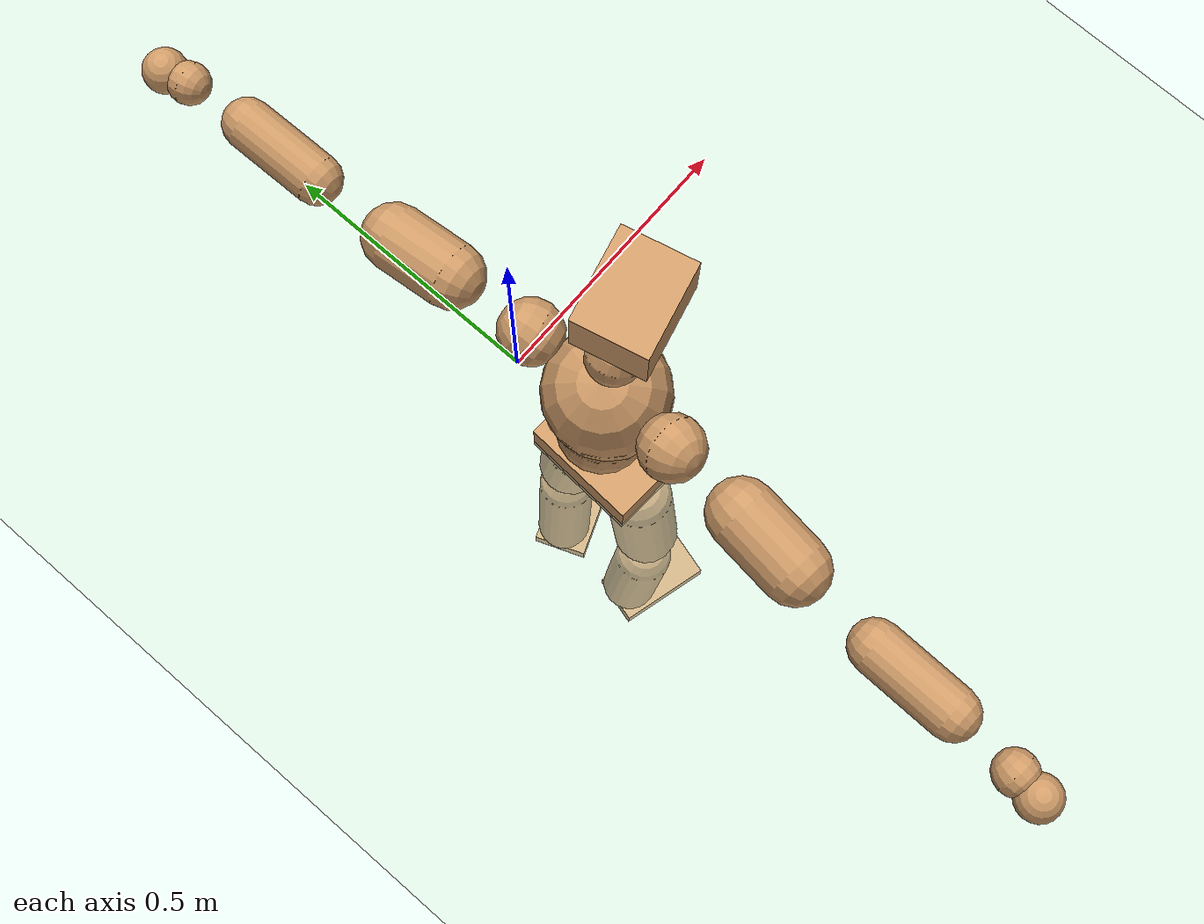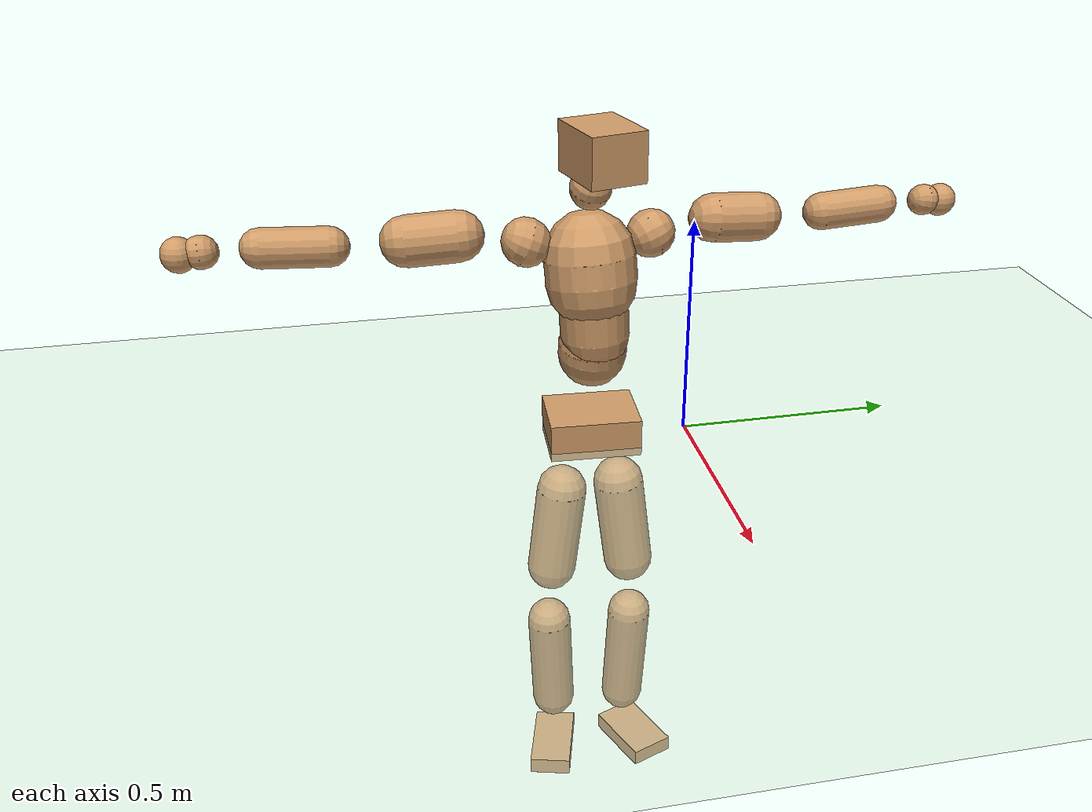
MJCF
<mujoco model="humanoid">
  <compiler coordinate="local" angle="radian"/>
  <default>
    <joint damping="0.0" armature="0.01" stiffness="0.0" limited="true"/>
    <geom conaffinity="1" condim="3" contype="7" margin="0.001" rgba="0.8 0.6 .4 1"/>
  </default>
  <asset>
    <texture type="skybox" builtin="gradient" rgb1=".4 .5 .6" rgb2="0 0 0" width="100" height="100"/>
    <texture builtin="flat" height="1278" mark="cross" markrgb="1 1 1" name="texgeom" random="0.01" rgb1="0.8 0.6 0.4" rgb2="0.8 0.6 0.4" type="cube" width="127"/>
    <texture builtin="checker" height="100" name="texplane" rgb1="0 0 0" rgb2="0.8 0.8 0.8" type="2d" width="100"/>
    <material name="MatPlane" reflectance="0.5" shininess="1" specular="1" texrepeat="60 60" texture="texplane"/>
    <material name="geom" texture="texgeom" texuniform="true"/>
  </asset>
  <worldbody>
    <light cutoff="100" diffuse="1 1 1" dir="-0 0 -1.3" directional="true" exponent="1" pos="0 0 1.3" specular=".1 .1 .1"/>
    <geom conaffinity="1" condim="3" name="floor" pos="0 0 0" rgba="0.8 0.9 0.8 1" size="100 100 .2" type="plane" material="MatPlane"/>
    <body name="Pelvis" pos="0.0002 -0.2226 0.0304">
      <freejoint name="Pelvis"/>
      <geom type="box" contype="1" conaffinity="1" density="5359.37418" pos="-0.0113 0.0006 -0.0079" size="0.0804 0.1042 0.0436" quat="0.9996 0.0000 0.0000 -0.0268" name="Pelvis"/>
      <body name="L_Hip" pos="-0.0158 0.0581 -0.0792">
        <joint name="L_Hip_x" type="hinge" pos="0 0 0" axis="1 0 0" stiffness="1600" damping="160" armature="0.02" range="-180.0000 180.0000"/>
        <joint name="L_Hip_y" type="hinge" pos="0 0 0" axis="0 1 0" stiffness="1600" damping="160" armature="0.02" range="-180.0000 180.0000"/>
        <joint name="L_Hip_z" type="hinge" pos="0 0 0" axis="0 0 1" stiffness="1600" damping="160" armature="0.02" range="-180.0000 180.0000"/>
        <geom type="capsule" contype="1" conaffinity="1" density="2040.816327" size="0.0595" fromto="0.0020 0.0106 -0.0889 0.0071 0.0374 -0.3125" name="L_Hip"/>
        <body name="L_Knee" pos="0.0091 0.0481 -0.4013">
          <joint name="L_Knee_x" type="hinge" pos="0 0 0" axis="1 0 0" stiffness="1600" damping="160" armature="0.02" range="-180.0000 180.0000"/>
          <joint name="L_Knee_y" type="hinge" pos="0 0 0" axis="0 1 0" stiffness="1600" damping="160" armature="0.02" range="-180.0000 180.0000"/>
          <joint name="L_Knee_z" type="hinge" pos="0 0 0" axis="0 0 1" stiffness="1600" damping="160" armature="0.02" range="-180.0000 180.0000"/>
          <geom type="capsule" contype="1" conaffinity="1" density="1234.567901" size="0.0531" fromto="-0.0065 -0.0026 -0.0828 -0.0287 -0.0116 -0.3638" name="L_Knee"/>
          <body name="L_Ankle" pos="-0.0352 -0.0143 -0.4467">
            <joint name="L_Ankle_x" type="hinge" pos="0 0 0" axis="1 0 0" stiffness="1600" damping="160" armature="0.02" range="-180.0000 180.0000"/>
            <joint name="L_Ankle_y" type="hinge" pos="0 0 0" axis="0 1 0" stiffness="1600" damping="160" armature="0.02" range="-180.0000 180.0000"/>
            <joint name="L_Ankle_z" type="hinge" pos="0 0 0" axis="0 0 1" stiffness="1600" damping="160" armature="0.02" range="-180.0000 180.0000"/>
            <geom type="box" contype="1" conaffinity="1" density="1000.000044" pos="0.0615 0.0239 -0.0312" size="0.0888 0.0545 0.0207" quat="0.9829 0.0000 0.0000 0.1842" name="L_Ankle"/>
            <body name="L_Toe" pos="0.1229 0.0477 -0.0624">
              <joint name="L_Toe_x" type="hinge" pos="0 0 0" axis="1 0 0" stiffness="1000" damping="100" armature="0.02" range="-180.0000 180.0000"/>
              <joint name="L_Toe_y" type="hinge" pos="0 0 0" axis="0 1 0" stiffness="1000" damping="100" armature="0.02" range="-180.0000 180.0000"/>
              <joint name="L_Toe_z" type="hinge" pos="0 0 0" axis="0 0 1" stiffness="1000" damping="100" armature="0.02" range="-180.0000 180.0000"/>
              <geom type="box" contype="1" conaffinity="1" density="7967163.909875" pos="0.0000 0.0000 0.0318" size="0.0011 0.0026 0.0011" quat="0.9821 0.0000 0.0000 0.1883" name="L_Toe"/>
            </body>
          </body>
        </body>
      </body>
      <body name="R_Hip" pos="-0.0127 -0.0591 -0.0872">
        <joint name="R_Hip_x" type="hinge" pos="0 0 0" axis="1 0 0" stiffness="1600" damping="160" armature="0.02" range="-180.0000 180.0000"/>
        <joint name="R_Hip_y" type="hinge" pos="0 0 0" axis="0 1 0" stiffness="1600" damping="160" armature="0.02" range="-180.0000 180.0000"/>
        <joint name="R_Hip_z" type="hinge" pos="0 0 0" axis="0 0 1" stiffness="1600" damping="160" armature="0.02" range="-180.0000 180.0000"/>
        <geom type="capsule" contype="1" conaffinity="1" density="2040.816327" size="0.0589" fromto="-0.0009 -0.0107 -0.0883 -0.0030 -0.0374 -0.3087" name="R_Hip"/>
        <body name="R_Knee" pos="-0.0039 -0.0481 -0.3969">
          <joint name="R_Knee_x" type="hinge" pos="0 0 0" axis="1 0 0" stiffness="1600" damping="160" armature="0.02" range="-180.0000 180.0000"/>
          <joint name="R_Knee_y" type="hinge" pos="0 0 0" axis="0 1 0" stiffness="1600" damping="160" armature="0.02" range="-180.0000 180.0000"/>
          <joint name="R_Knee_z" type="hinge" pos="0 0 0" axis="0 0 1" stiffness="1600" damping="160" armature="0.02" range="-180.0000 180.0000"/>
          <geom type="capsule" contype="1" conaffinity="1" density="1234.567901" size="0.0537" fromto="-0.0061 0.0035 -0.0834 -0.0261 0.0149 -0.3556" name="R_Knee"/>
          <body name="R_Ankle" pos="-0.0322 0.0184 -0.439">
            <joint name="R_Ankle_x" type="hinge" pos="0 0 0" axis="1 0 0" stiffness="1600" damping="160" armature="0.02" range="-180.0000 180.0000"/>
            <joint name="R_Ankle_y" type="hinge" pos="0 0 0" axis="0 1 0" stiffness="1600" damping="160" armature="0.02" range="-180.0000 180.0000"/>
            <joint name="R_Ankle_z" type="hinge" pos="0 0 0" axis="0 0 1" stiffness="1600" damping="160" armature="0.02" range="-180.0000 180.0000"/>
            <geom type="box" contype="1" conaffinity="1" density="999.999981" pos="0.0656 -0.0178 -0.0329" size="0.0926 0.0508 0.0221" quat="0.9912 0.0000 0.0000 -0.1323" name="R_Ankle"/>
            <body name="R_Toe" pos="0.1311 -0.0356 -0.0658">
              <joint name="R_Toe_x" type="hinge" pos="0 0 0" axis="1 0 0" stiffness="1000" damping="100" armature="0.02" range="-180.0000 180.0000"/>
              <joint name="R_Toe_y" type="hinge" pos="0 0 0" axis="0 1 0" stiffness="1000" damping="100" armature="0.02" range="-180.0000 180.0000"/>
              <joint name="R_Toe_z" type="hinge" pos="0 0 0" axis="0 0 1" stiffness="1000" damping="100" armature="0.02" range="-180.0000 180.0000"/>
              <geom type="box" contype="1" conaffinity="1" density="8504558.816349" pos="0.0000 0.0000 0.0327" size="0.0011 0.0025 0.0011" quat="0.9923 0.0000 0.0000 -0.1235" name="R_Toe"/>
            </body>
          </body>
        </body>
      </body>
      <body name="Torso" pos="-0.0394 0.0046 0.1189">
        <joint name="Torso_x" type="hinge" pos="0 0 0" axis="1 0 0" stiffness="2000" damping="200" armature="0.02" range="-180.0000 180.0000"/>
        <joint name="Torso_y" type="hinge" pos="0 0 0" axis="0 1 0" stiffness="2000" damping="200" armature="0.02" range="-180.0000 180.0000"/>
        <joint name="Torso_z" type="hinge" pos="0 0 0" axis="0 0 1" stiffness="2000" damping="200" armature="0.02" range="-180.0000 180.0000"/>
        <geom type="capsule" contype="1" conaffinity="1" density="2040.816327" size="0.0777" fromto="0.0145 0.0020 0.0763 0.0096 0.0013 0.0503" name="Torso"/>
        <body name="Spine" pos="0.0241 0.0033 0.1266">
          <joint name="Spine_x" type="hinge" pos="0 0 0" axis="1 0 0" stiffness="2000" damping="200" armature="0.02" range="-180.0000 180.0000"/>
          <joint name="Spine_y" type="hinge" pos="0 0 0" axis="0 1 0" stiffness="2000" damping="200" armature="0.02" range="-180.0000 180.0000"/>
          <joint name="Spine_z" type="hinge" pos="0 0 0" axis="0 0 1" stiffness="2000" damping="200" armature="0.02" range="-180.0000 180.0000"/>
          <geom type="capsule" contype="1" conaffinity="1" density="2040.816327" size="0.0774" fromto="0.0004 -0.0042 0.0773 -0.0001 0.0014 -0.0261" name="Spine"/>
          <body name="Chest" pos="0.0003 -0.0028 0.0512">
            <joint name="Chest_x" type="hinge" pos="0 0 0" axis="1 0 0" stiffness="2000" damping="200" armature="0.02" range="-180.0000 180.0000"/>
            <joint name="Chest_y" type="hinge" pos="0 0 0" axis="0 1 0" stiffness="2000" damping="200" armature="0.02" range="-180.0000 180.0000"/>
            <joint name="Chest_z" type="hinge" pos="0 0 0" axis="0 0 1" stiffness="2000" damping="200" armature="0.02" range="-180.0000 180.0000"/>
            <geom type="capsule" contype="1" conaffinity="1" density="2040.816327" size="0.1016" fromto="-0.0166 -0.0056 0.1001 -0.0075 -0.0025 0.0453" name="Chest"/>
            <body name="Neck" pos="-0.0292 -0.0121 0.2099">
              <joint name="Neck_x" type="hinge" pos="0 0 0" axis="1 0 0" stiffness="1000" damping="100" armature="0.02" range="-180.0000 180.0000"/>
              <joint name="Neck_y" type="hinge" pos="0 0 0" axis="0 1 0" stiffness="1000" damping="100" armature="0.02" range="-180.0000 180.0000"/>
              <joint name="Neck_z" type="hinge" pos="0 0 0" axis="0 0 1" stiffness="1000" damping="100" armature="0.02" range="-180.0000 180.0000"/>
              <geom type="capsule" contype="1" conaffinity="1" density="1000" size="0.0451" fromto="0.0259 0.0055 0.0445 0.0269 0.0057 0.0462" name="Neck"/>
              <body name="Head" pos="0.0527 0.0113 0.0906">
                <joint name="Head_x" type="hinge" pos="0 0 0" axis="1 0 0" stiffness="1000" damping="100" armature="0.02" range="-180.0000 180.0000"/>
                <joint name="Head_y" type="hinge" pos="0 0 0" axis="0 1 0" stiffness="1000" damping="100" armature="0.02" range="-180.0000 180.0000"/>
                <joint name="Head_z" type="hinge" pos="0 0 0" axis="0 0 1" stiffness="1000" damping="100" armature="0.02" range="-180.0000 180.0000"/>
                <geom type="box" contype="1" conaffinity="1" density="2250.000086" pos="0.0274 0.0066 0.0463" size="0.0789 0.0621 0.053" quat="0.9929 0.0000 0.0000 0.1186" name="Head"/>
              </body>
            </body>
            <body name="L_Thorax" pos="-0.0198 0.0723 0.1136">
              <joint name="L_Thorax_x" type="hinge" pos="0 0 0" axis="1 0 0" stiffness="1000" damping="100" armature="0.02" range="-180.0000 180.0000"/>
              <joint name="L_Thorax_y" type="hinge" pos="0 0 0" axis="0 1 0" stiffness="1000" damping="100" armature="0.02" range="-180.0000 180.0000"/>
              <joint name="L_Thorax_z" type="hinge" pos="0 0 0" axis="0 0 1" stiffness="1000" damping="100" armature="0.02" range="-180.0000 180.0000"/>
              <geom type="capsule" contype="1" conaffinity="1" density="1000" size="0.0527" fromto="-0.0087 0.0603 0.0241 -0.0090 0.0621 0.0248" name="L_Thorax"/>
              <body name="L_Shoulder" pos="-0.0177 0.1224 0.0489">
                <joint name="L_Shoulder_x" type="hinge" pos="0 0 0" axis="1 0 0" stiffness="1000" damping="100" armature="0.02" range="-720.0000 720.0000"/>
                <joint name="L_Shoulder_y" type="hinge" pos="0 0 0" axis="0 1 0" stiffness="1000" damping="100" armature="0.02" range="-720.0000 720.0000"/>
                <joint name="L_Shoulder_z" type="hinge" pos="0 0 0" axis="0 0 1" stiffness="1000" damping="100" armature="0.02" range="-720.0000 720.0000"/>
                <geom type="capsule" contype="1" conaffinity="1" density="1000" size="0.0537" fromto="-0.0070 0.0832 -0.0055 -0.0159 0.1893 -0.0126" name="L_Shoulder"/>
                <body name="L_Elbow" pos="-0.0229 0.2725 -0.0181">
                  <joint name="L_Elbow_x" type="hinge" pos="0 0 0" axis="1 0 0" stiffness="1000" damping="100" armature="0.02" range="-720.0000 720.0000"/>
                  <joint name="L_Elbow_y" type="hinge" pos="0 0 0" axis="0 1 0" stiffness="1000" damping="100" armature="0.02" range="-720.0000 720.0000"/>
                  <joint name="L_Elbow_z" type="hinge" pos="0 0 0" axis="0 0 1" stiffness="1000" damping="100" armature="0.02" range="-720.0000 720.0000"/>
                  <geom type="capsule" contype="1" conaffinity="1" density="1000" size="0.0414" fromto="-0.0021 0.0713 0.0036 -0.0063 0.2091 0.0105" name="L_Elbow"/>
                  <body name="L_Wrist" pos="-0.0084 0.2804 0.0141">
                    <joint name="L_Wrist_x" type="hinge" pos="0 0 0" axis="1 0 0" stiffness="600" damping="60" armature="0.02" range="-180.0000 180.0000"/>
                    <joint name="L_Wrist_y" type="hinge" pos="0 0 0" axis="0 1 0" stiffness="600" damping="60" armature="0.02" range="-180.0000 180.0000"/>
                    <joint name="L_Wrist_z" type="hinge" pos="0 0 0" axis="0 0 1" stiffness="600" damping="60" armature="0.02" range="-180.0000 180.0000"/>
                    <geom type="capsule" contype="1" conaffinity="1" density="1000" size="0.0346" fromto="-0.0080 0.0436 -0.0052 -0.0083 0.0456 -0.0055" name="L_Wrist"/>
                    <body name="L_Hand" pos="-0.0163 0.0892 -0.0107">
                      <joint name="L_Hand_x" type="hinge" pos="0 0 0" axis="1 0 0" stiffness="600" damping="60" armature="0.02" range="-180.0000 180.0000"/>
                      <joint name="L_Hand_y" type="hinge" pos="0 0 0" axis="0 1 0" stiffness="600" damping="60" armature="0.02" range="-180.0000 180.0000"/>
                      <joint name="L_Hand_z" type="hinge" pos="0 0 0" axis="0 0 1" stiffness="600" damping="60" armature="0.02" range="-180.0000 180.0000"/>
                      <geom type="sphere" contype="1" conaffinity="1" density="1000" size="0.0364" pos="0.0000 0.0000 0.0000" name="L_Hand"/>
                    </body>
                  </body>
                </body>
              </body>
            </body>
            <body name="R_Thorax" pos="-0.0231 -0.0846 0.1127">
              <joint name="R_Thorax_x" type="hinge" pos="0 0 0" axis="1 0 0" stiffness="1000" damping="100" armature="0.02" range="-180.0000 180.0000"/>
              <joint name="R_Thorax_y" type="hinge" pos="0 0 0" axis="0 1 0" stiffness="1000" damping="100" armature="0.02" range="-180.0000 180.0000"/>
              <joint name="R_Thorax_z" type="hinge" pos="0 0 0" axis="0 0 1" stiffness="1000" damping="100" armature="0.02" range="-180.0000 180.0000"/>
              <geom type="capsule" contype="1" conaffinity="1" density="1000" size="0.0535" fromto="-0.0036 -0.0565 0.0253 -0.0037 -0.0583 0.0261" name="R_Thorax"/>
              <body name="R_Shoulder" pos="-0.0074 -0.1148 0.0515">
                <joint name="R_Shoulder_x" type="hinge" pos="0 0 0" axis="1 0 0" stiffness="1000" damping="100" armature="0.02" range="-720.0000 720.0000"/>
                <joint name="R_Shoulder_y" type="hinge" pos="0 0 0" axis="0 1 0" stiffness="1000" damping="100" armature="0.02" range="-720.0000 720.0000"/>
                <joint name="R_Shoulder_z" type="hinge" pos="0 0 0" axis="0 0 1" stiffness="1000" damping="100" armature="0.02" range="-720.0000 720.0000"/>
                <geom type="capsule" contype="1" conaffinity="1" density="1000" size="0.0554" fromto="-0.0086 -0.0848 -0.0058 -0.0199 -0.1962 -0.0135" name="R_Shoulder"/>
                <body name="R_Elbow" pos="-0.0285 -0.2809 -0.0193">
                  <joint name="R_Elbow_x" type="hinge" pos="0 0 0" axis="1 0 0" stiffness="1000" damping="100" armature="0.02" range="-720.0000 720.0000"/>
                  <joint name="R_Elbow_y" type="hinge" pos="0 0 0" axis="0 1 0" stiffness="1000" damping="100" armature="0.02" range="-720.0000 720.0000"/>
                  <joint name="R_Elbow_z" type="hinge" pos="0 0 0" axis="0 0 1" stiffness="1000" damping="100" armature="0.02" range="-720.0000 720.0000"/>
                  <geom type="capsule" contype="1" conaffinity="1" density="1000" size="0.0426" fromto="-0.0016 -0.0726 0.0027 -0.0047 -0.2151 0.0081" name="R_Elbow"/>
                  <body name="R_Wrist" pos="-0.0063 -0.2877 0.0109">
                    <joint name="R_Wrist_x" type="hinge" pos="0 0 0" axis="1 0 0" stiffness="600" damping="60" armature="0.02" range="-180.0000 180.0000"/>
                    <joint name="R_Wrist_y" type="hinge" pos="0 0 0" axis="0 1 0" stiffness="600" damping="60" armature="0.02" range="-180.0000 180.0000"/>
                    <joint name="R_Wrist_z" type="hinge" pos="0 0 0" axis="0 0 1" stiffness="600" damping="60" armature="0.02" range="-180.0000 180.0000"/>
                    <geom type="capsule" contype="1" conaffinity="1" density="1000" size="0.0358" fromto="-0.0053 -0.0453 -0.0044 -0.0055 -0.0473 -0.0046" name="R_Wrist"/>
                    <body name="R_Hand" pos="-0.0109 -0.0925 -0.009">
                      <joint name="R_Hand_x" type="hinge" pos="0 0 0" axis="1 0 0" stiffness="600" damping="60" armature="0.02" range="-180.0000 180.0000"/>
                      <joint name="R_Hand_y" type="hinge" pos="0 0 0" axis="0 1 0" stiffness="600" damping="60" armature="0.02" range="-180.0000 180.0000"/>
                      <joint name="R_Hand_z" type="hinge" pos="0 0 0" axis="0 0 1" stiffness="600" damping="60" armature="0.02" range="-180.0000 180.0000"/>
                      <geom type="sphere" contype="1" conaffinity="1" density="1000" size="0.0375" pos="0.0000 0.0000 0.0000" name="R_Hand"/>
                    </body>
                  </body>
                </body>
              </body>
            </body>
          </body>
        </body>
      </body>
    </body>
  </worldbody>
  <actuator>
    <motor name="L_Hip_x" joint="L_Hip_x" gear="500"/>
    <motor name="L_Hip_y" joint="L_Hip_y" gear="500"/>
    <motor name="L_Hip_z" joint="L_Hip_z" gear="500"/>
    <motor name="L_Knee_x" joint="L_Knee_x" gear="500"/>
    <motor name="L_Knee_y" joint="L_Knee_y" gear="500"/>
    <motor name="L_Knee_z" joint="L_Knee_z" gear="500"/>
    <motor name="L_Ankle_x" joint="L_Ankle_x" gear="500"/>
    <motor name="L_Ankle_y" joint="L_Ankle_y" gear="500"/>
    <motor name="L_Ankle_z" joint="L_Ankle_z" gear="500"/>
    <motor name="L_Toe_x" joint="L_Toe_x" gear="500"/>
    <motor name="L_Toe_y" joint="L_Toe_y" gear="500"/>
    <motor name="L_Toe_z" joint="L_Toe_z" gear="500"/>
    <motor name="R_Hip_x" joint="R_Hip_x" gear="500"/>
    <motor name="R_Hip_y" joint="R_Hip_y" gear="500"/>
    <motor name="R_Hip_z" joint="R_Hip_z" gear="500"/>
    <motor name="R_Knee_x" joint="R_Knee_x" gear="500"/>
    <motor name="R_Knee_y" joint="R_Knee_y" gear="500"/>
    <motor name="R_Knee_z" joint="R_Knee_z" gear="500"/>
    <motor name="R_Ankle_x" joint="R_Ankle_x" gear="500"/>
    <motor name="R_Ankle_y" joint="R_Ankle_y" gear="500"/>
    <motor name="R_Ankle_z" joint="R_Ankle_z" gear="500"/>
    <motor name="R_Toe_x" joint="R_Toe_x" gear="500"/>
    <motor name="R_Toe_y" joint="R_Toe_y" gear="500"/>
    <motor name="R_Toe_z" joint="R_Toe_z" gear="500"/>
    <motor name="Torso_x" joint="Torso_x" gear="500"/>
    <motor name="Torso_y" joint="Torso_y" gear="500"/>
    <motor name="Torso_z" joint="Torso_z" gear="500"/>
    <motor name="Spine_x" joint="Spine_x" gear="500"/>
    <motor name="Spine_y" joint="Spine_y" gear="500"/>
    <motor name="Spine_z" joint="Spine_z" gear="500"/>
    <motor name="Chest_x" joint="Chest_x" gear="500"/>
    <motor name="Chest_y" joint="Chest_y" gear="500"/>
    <motor name="Chest_z" joint="Chest_z" gear="500"/>
    <motor name="Neck_x" joint="Neck_x" gear="500"/>
    <motor name="Neck_y" joint="Neck_y" gear="500"/>
    <motor name="Neck_z" joint="Neck_z" gear="500"/>
    <motor name="Head_x" joint="Head_x" gear="500"/>
    <motor name="Head_y" joint="Head_y" gear="500"/>
    <motor name="Head_z" joint="Head_z" gear="500"/>
    <motor name="L_Thorax_x" joint="L_Thorax_x" gear="500"/>
    <motor name="L_Thorax_y" joint="L_Thorax_y" gear="500"/>
    <motor name="L_Thorax_z" joint="L_Thorax_z" gear="500"/>
    <motor name="L_Shoulder_x" joint="L_Shoulder_x" gear="500"/>
    <motor name="L_Shoulder_y" joint="L_Shoulder_y" gear="500"/>
    <motor name="L_Shoulder_z" joint="L_Shoulder_z" gear="500"/>
    <motor name="L_Elbow_x" joint="L_Elbow_x" gear="500"/>
    <motor name="L_Elbow_y" joint="L_Elbow_y" gear="500"/>
    <motor name="L_Elbow_z" joint="L_Elbow_z" gear="500"/>
    <motor name="L_Wrist_x" joint="L_Wrist_x" gear="500"/>
    <motor name="L_Wrist_y" joint="L_Wrist_y" gear="500"/>
    <motor name="L_Wrist_z" joint="L_Wrist_z" gear="500"/>
    <motor name="L_Hand_x" joint="L_Hand_x" gear="500"/>
    <motor name="L_Hand_y" joint="L_Hand_y" gear="500"/>
    <motor name="L_Hand_z" joint="L_Hand_z" gear="500"/>
    <motor name="R_Thorax_x" joint="R_Thorax_x" gear="500"/>
    <motor name="R_Thorax_y" joint="R_Thorax_y" gear="500"/>
    <motor name="R_Thorax_z" joint="R_Thorax_z" gear="500"/>
    <motor name="R_Shoulder_x" joint="R_Shoulder_x" gear="500"/>
    <motor name="R_Shoulder_y" joint="R_Shoulder_y" gear="500"/>
    <motor name="R_Shoulder_z" joint="R_Shoulder_z" gear="500"/>
    <motor name="R_Elbow_x" joint="R_Elbow_x" gear="500"/>
    <motor name="R_Elbow_y" joint="R_Elbow_y" gear="500"/>
    <motor name="R_Elbow_z" joint="R_Elbow_z" gear="500"/>
    <motor name="R_Wrist_x" joint="R_Wrist_x" gear="500"/>
    <motor name="R_Wrist_y" joint="R_Wrist_y" gear="500"/>
    <motor name="R_Wrist_z" joint="R_Wrist_z" gear="500"/>
    <motor name="R_Hand_x" joint="R_Hand_x" gear="500"/>
    <motor name="R_Hand_y" joint="R_Hand_y" gear="500"/>
    <motor name="R_Hand_z" joint="R_Hand_z" gear="500"/>
  </actuator>
  <contact>
    <exclude body1="Torso" body2="Chest"/>
    <exclude body1="Head" body2="Chest"/>
    <exclude body1="R_Knee" body2="R_Toe"/>
    <exclude body1="R_Knee" body2="L_Ankle"/>
    <exclude body1="R_Knee" body2="L_Toe"/>
    <exclude body1="L_Knee" body2="L_Toe"/>
    <exclude body1="L_Knee" body2="R_Ankle"/>
    <exclude body1="L_Knee" body2="R_Toe"/>
    <exclude body1="L_Shoulder" body2="Chest"/>
    <exclude body1="R_Shoulder" body2="Chest"/>
  </contact>
  <sensor/>
  <size njmax="700" nconmax="700"/>
</mujoco>
